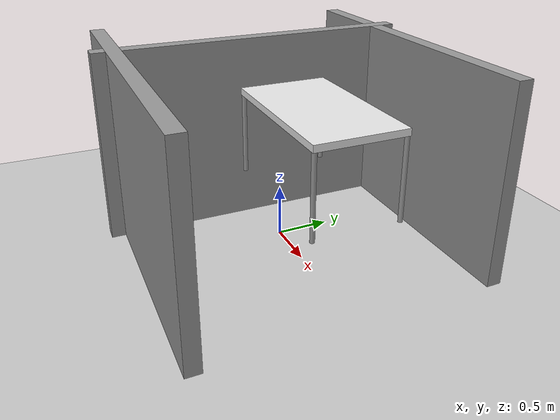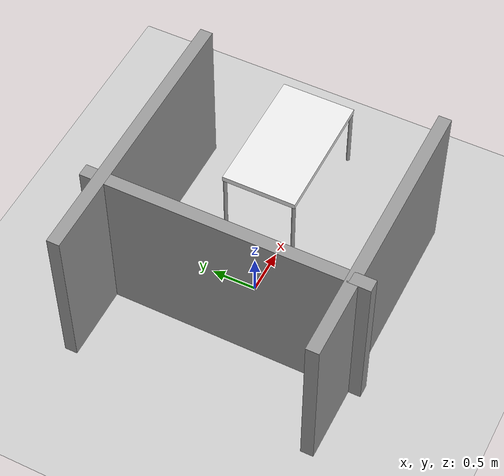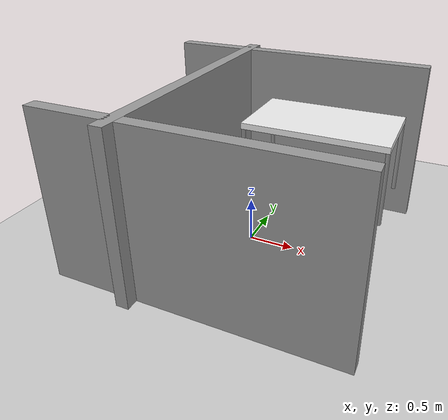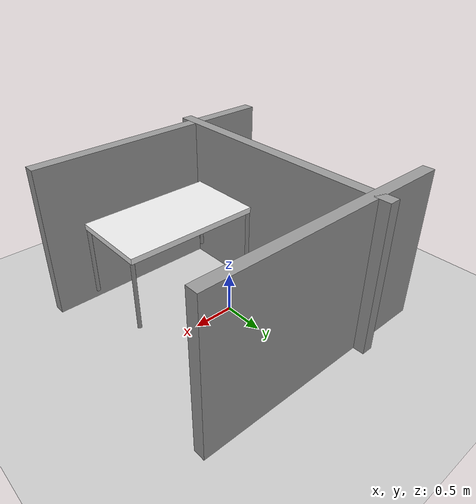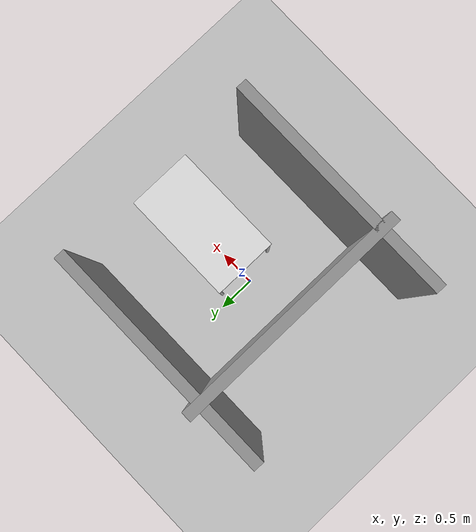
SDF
<?xml version="1.0" ?>
<sdf version="1.6">
  <world name="default">
    <include>
      <uri>model://sun</uri>
    </include>

    <include>
      <uri>model://ground_plane</uri>
    </include>

    <physics name="ode" type="ode">
      <ode>
        <constraints>
          <contact_max_correcting_vel>0</contact_max_correcting_vel>
        </constraints>
      </ode>
      <max_step_size>0.001</max_step_size>
      <real_time_update_rate>1000</real_time_update_rate>
    </physics>

    <plugin name="stepping_plugin" filename="libstepping_plugin.so"/>

    <include>
      <name>table</name>
      <pose>0.770124 0 0.80 0 -0 0</pose>
      <uri>model://victor_table</uri>
    </include>

    <include>
      <name>fake_wall1</name>
      <uri>model://fake_wall</uri>
      <pose>0 -1.35 0.9 0 0 0</pose>
    </include>

    <include>
      <name>fake_wall2</name>
      <uri>model://fake_wall</uri>
      <pose>0 1.35 0.9 0 0 0</pose>
    </include>

    <include>
      <name>fake_wall3</name>
      <uri>model://fake_wall</uri>
      <pose>-0.65 0 0.9 0 0 1.5707</pose>
    </include>

    <!-- A gazebo links attacher -->
    <plugin name="ros_link_attacher_plugin" filename="libgazebo_ros_link_attacher.so"/>

  </world>
</sdf>

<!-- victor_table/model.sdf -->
<sdf version="1.6">
    <model name='table'>
        <static>1</static>
        <allow_auto_disable>true</allow_auto_disable>
        <pose frame=''>0.8 0 0 0 0 -1.5708</pose>
        <link name='link'>
            <collision name='surface'>
                <pose frame=''>0 0 0.75 0 -0 0</pose>
                <geometry>
                    <box>
                        <size>1.5 0.8 0.06</size>
                    </box>
                </geometry>
                <surface>
                    <friction>
                        <ode>
                            <mu>0.6</mu>
                            <mu2>0.6</mu2>
                        </ode>
                    </friction>
                </surface>
            </collision>
            <visual name='visual1'>
                <pose frame=''>0 0 0.75 0 -0 0</pose>
                <geometry>
                    <box>
                        <size>1.4 0.8 0.06</size>
                    </box>
                </geometry>
                <material>
                    <script>
                        <uri>file://media/materials/scripts/gazebo.material</uri>
                        <name>Gazebo/White</name>
                    </script>
                </material>
            </visual>
            <collision name='front_left_leg'>
                <pose frame=''>0.68 0.38 0.375 0 -0 0</pose>
                <geometry>
                    <cylinder>
                        <radius>0.02</radius>
                        <length>0.75</length>
                    </cylinder>
                </geometry>
            </collision>
            <visual name='front_left_leg'>
                <pose frame=''>0.68 0.38 0.375 0 -0 0</pose>
                <geometry>
                    <cylinder>
                        <radius>0.02</radius>
                        <length>0.75</length>
                    </cylinder>
                </geometry>
                <material>
                    <script>
                        <uri>file://media/materials/scripts/gazebo.material</uri>
                        <name>Gazebo/Grey</name>
                    </script>
                </material>
            </visual>
            <collision name='front_right_leg'>
                <pose frame=''>0.68 -0.38 0.375 0 -0 0</pose>
                <geometry>
                    <cylinder>
                        <radius>0.02</radius>
                        <length>0.75</length>
                    </cylinder>
                </geometry>
            </collision>
            <visual name='front_right_leg'>
                <pose frame=''>0.68 -0.38 0.375 0 -0 0</pose>
                <geometry>
                    <cylinder>
                        <radius>0.02</radius>
                        <length>0.75</length>
                    </cylinder>
                </geometry>
                <material>
                    <script>
                        <uri>file://media/materials/scripts/gazebo.material</uri>
                        <name>Gazebo/Grey</name>
                    </script>
                </material>
            </visual>
            <collision name='back_right_leg'>
                <pose frame=''>-0.68 -0.38 0.375 0 -0 0</pose>
                <geometry>
                    <cylinder>
                        <radius>0.02</radius>
                        <length>0.75</length>
                    </cylinder>
                </geometry>
            </collision>
            <visual name='back_right_leg'>
                <pose frame=''>-0.68 -0.38 0.375 0 -0 0</pose>
                <geometry>
                    <cylinder>
                        <radius>0.02</radius>
                        <length>0.75</length>
                    </cylinder>
                </geometry>
                <material>
                    <script>
                        <uri>file://media/materials/scripts/gazebo.material</uri>
                        <name>Gazebo/Grey</name>
                    </script>
                </material>
            </visual>
            <collision name='back_left_leg'>
                <geometry>
                    <cylinder>
                        <radius>0.02</radius>
                        <length>0.75</length>
                    </cylinder>
                </geometry>
            </collision>
            <visual name='back_left_leg'>
                <pose frame=''>-0.68 0.38 0.375 0 -0 0</pose>
                <geometry>
                    <cylinder>
                        <radius>0.02</radius>
                        <length>0.75</length>
                    </cylinder>
                </geometry>
                <material>
                    <script>
                        <uri>file://media/materials/scripts/gazebo.material</uri>
                        <name>Gazebo/Grey</name>
                    </script>
                </material>
            </visual>
            <self_collide>0</self_collide>
            <inertial>
                <inertia>
                    <ixx>1</ixx>
                    <ixy>0</ixy>
                    <ixz>0</ixz>
                    <iyy>1</iyy>
                    <iyz>0</iyz>
                    <izz>1</izz>
                </inertia>
                <mass>1</mass>
            </inertial>
        </link>
    </model>
</sdf>

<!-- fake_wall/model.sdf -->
<sdf version='1.7'>
  <model name='fake_wall'>
    <link name='unit_box::link'>
      <inertial>
        <mass>1</mass>
        <inertia>
          <ixx>0.166667</ixx>
          <ixy>0</ixy>
          <ixz>0</ixz>
          <iyy>0.166667</iyy>
          <iyz>0</iyz>
          <izz>0.166667</izz>
        </inertia>
        <pose>0 0 0 0 -0 0</pose>
      </inertial>
      <self_collide>0</self_collide>
      <enable_wind>0</enable_wind>
      <kinematic>1</kinematic>
      <pose>0 0 0 0 -0 0</pose>
      <visual name='visual'>
        <geometry>
          <box>
            <size>3.10724 0.140567 1.89855</size>
          </box>
        </geometry>
        <material>
          <script>
            <name>Gazebo/Grey</name>
            <uri>file://media/materials/scripts/gazebo.material</uri>
          </script>
          <shader type='pixel'/>
        </material>
        <pose>0 0 0 0 -0 0</pose>
        <transparency>0</transparency>
        <cast_shadows>1</cast_shadows>
      </visual>
      <collision name='collision'>
        <laser_retro>0</laser_retro>
        <max_contacts>10</max_contacts>
        <pose>0 0 0 0 -0 0</pose>
        <geometry>
          <box>
            <size>3.10724 0.140567 1.89855</size>
          </box>
        </geometry>
        <surface>
          <friction>
            <ode>
              <mu>1</mu>
              <mu2>1</mu2>
              <fdir1>0 0 0</fdir1>
              <slip1>0</slip1>
              <slip2>0</slip2>
            </ode>
            <torsional>
              <coefficient>1</coefficient>
              <patch_radius>0</patch_radius>
              <surface_radius>0</surface_radius>
              <use_patch_radius>1</use_patch_radius>
              <ode>
                <slip>0</slip>
              </ode>
            </torsional>
          </friction>
          <bounce>
            <restitution_coefficient>0</restitution_coefficient>
            <threshold>1e+06</threshold>
          </bounce>
          <contact>
            <collide_without_contact>0</collide_without_contact>
            <collide_without_contact_bitmask>1</collide_without_contact_bitmask>
            <collide_bitmask>1</collide_bitmask>
            <ode>
              <soft_cfm>0</soft_cfm>
              <soft_erp>0.2</soft_erp>
              <kp>1e+13</kp>
              <kd>1</kd>
              <max_vel>0.01</max_vel>
              <min_depth>0</min_depth>
            </ode>
            <bullet>
              <split_impulse>1</split_impulse>
              <split_impulse_penetration_threshold>-0.01</split_impulse_penetration_threshold>
              <soft_cfm>0</soft_cfm>
              <soft_erp>0.2</soft_erp>
              <kp>1e+13</kp>
              <kd>1</kd>
            </bullet>
          </contact>
        </surface>
      </collision>
    </link>
    <static>0</static>
    <allow_auto_disable>1</allow_auto_disable>
  </model>
</sdf>
